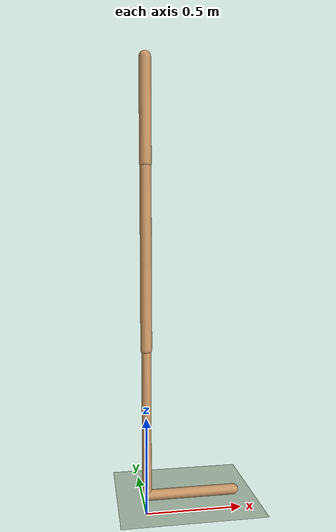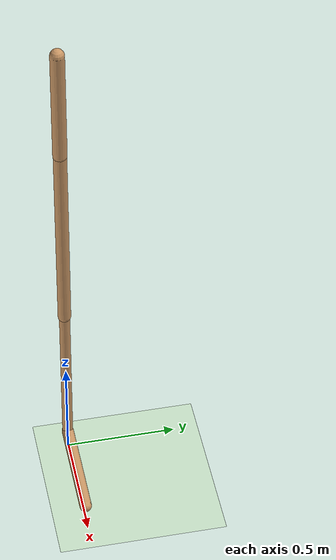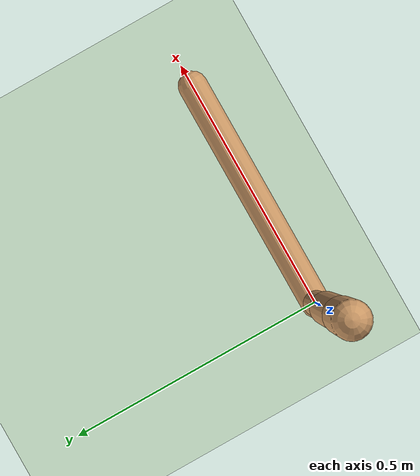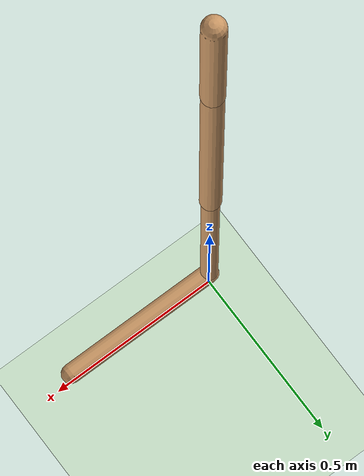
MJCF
<mujoco model="walker2d">
  <compiler angle="degree" inertiafromgeom="true" />
  <default>
    <joint armature="0.01" damping=".1" limited="true" />
    <geom conaffinity="0" condim="3" contype="1" density="1000" friction=".7 .1 .1" rgba="0.8 0.6 .4 1" />
  </default>
  <option integrator="RK4" timestep="0.002" />
  <worldbody>
    <light cutoff="100" diffuse="1 1 1" dir="-0 0 -1.3" directional="true" exponent="1" pos="0 0 1.3" specular=".1 .1 .1" />
    <geom conaffinity="1" condim="3" name="floor" pos="0 0 0" rgba="0.8 0.9 0.8 1" size="40 40 40" type="plane" material="MatPlane" />
    <body name="torso" pos="0 0 2.0529662132263184">
      <camera name="track" mode="trackcom" pos="0 -5 -1.25" xyaxes="1 0 0 0 0 1" />
      <joint armature="0" axis="1 0 0" damping="0" limited="false" name="rootx" pos="0 0 -1.25" stiffness="0" type="slide" />
      <joint armature="0" axis="0 0 1" damping="0" limited="false" name="rootz" pos="0 0 -1.25" ref="1.25" stiffness="0" type="slide" />
      <joint armature="0" axis="0 1 0" damping="0" limited="false" name="rooty" pos="0 0 0" stiffness="0" type="hinge" />
      <geom friction="0.9" name="torso_geom" size="0.030687101185321808 0.26083314418792725" type="capsule" />
      <body name="thigh" pos="0 0 -0.26083314418792725">
        <joint axis="0 -1 0" name="thigh_joint" pos="0 0 0" range="-150 0" type="hinge" />
        <site name="torso_thigh_site" pos="0 0 0" size="0.01" type="sphere" rgba="1 0 0 0.5" />
        <geom friction="0.9" pos="0 0 -0.4673004746437073" name="thigh_geom" size="0.029096173122525215 0.4673004746437073" type="capsule" />
        <body name="leg" pos="0 0 -1.3133670091629028">
          <joint axis="0 -1 0" name="leg_joint" pos="0 0 0.3787660598754883" range="-150 0" type="hinge" />
          <site name="thigh_leg_site" pos="0 0 0.25" size="0.01" type="sphere" rgba="1 0 0 0.5" />
          <geom friction="0.9" name="leg_geom" size="0.023973869159817696 0.3787660598754883" type="capsule" />
          <body name="foot" pos="0.45548349618911743 0 -0.47876605987548826">
            <joint axis="0 -1 0" name="foot_joint" pos="-0.45548349618911743 0 0.1" range="-45 45" type="hinge" />
            <site name="leg_foot_site" pos="-0.2 0 0.1" size="0.01" type="sphere" rgba="1 0 0 0.5" />
            <geom friction="0.9" pos="-0.22774174809455872 0 0.1" quat="0.70710678118654757 0 -0.70710678118654746 0" name="foot_geom" size="0.02725152298808098 0.22774174809455872" type="capsule" />
          </body>
        </body>
      </body>

      <body name="thigh_left" pos="0 0 -0.26083314418792725">
        <joint axis="0 -1 0" name="thigh_left_joint" pos="0 0 0" range="-150 0" type="hinge" />
        <site name="torso_thigh_left_site" pos="0 0 0" size="0.01" type="sphere" rgba="1 0 0 0.5" />
        <geom friction="0.9" name="thigh_left_geom" rgba=".7 .3 .6 1" size="0.029096173122525215 0.4673004746437073" pos="0 0 -0.4673004746437073" type="capsule" />
        <body name="leg_left" pos="0 0 -1.3133670091629028">
          <joint axis="0 -1 0" name="leg_left_joint" pos="0 0 0.3787660598754883" range="-150 0" type="hinge" />
          <site name="thigh_leg_left_site" pos="0 0 0.25" size="0.01" type="sphere" rgba="1 0 0 0.5" />
          <geom friction="0.9" name="leg_left_geom" rgba=".7 .3 .6 1" size="0.023973869159817696 0.3787660598754883" type="capsule" />
          <body name="foot_left" pos="0.45548349618911743 0 -0.47876605987548826">
            <joint axis="0 -1 0" name="foot_left_joint" pos="-0.45548349618911743 0 0.1" range="-45 45" type="hinge" />
            <site name="leg_foot_left_site" pos="-0.2 0 0.1" size="0.01" type="sphere" rgba="1 0 0 0.5" />
            <geom friction="1.9" name="foot_left_geom" rgba=".7 .3 .6 1" size="0.02725152298808098 0.22774174809455872" pos="-0.22774174809455872 0 0.1" type="capsule" quat="0.70710678118654757 0 -0.70710678118654746 0" />
          </body>
        </body>
      </body>
    </body>
  </worldbody>
  <actuator>

    <motor ctrllimited="true" ctrlrange="-1.0 1.0" gear="70.33078091022496" joint="thigh_joint" />
    <motor ctrllimited="true" ctrlrange="-1.0 1.0" gear="54.423607574882084" joint="leg_joint" />
    <motor ctrllimited="true" ctrlrange="-1.0 1.0" gear="46.98094043387807" joint="foot_joint" />
    <motor ctrllimited="true" ctrlrange="-1.0 1.0" gear="70.33078091022496" joint="thigh_left_joint" />
    <motor ctrllimited="true" ctrlrange="-1.0 1.0" gear="54.423607574882084" joint="leg_left_joint" />
    <motor ctrllimited="true" ctrlrange="-1.0 1.0" gear="46.98094043387807" joint="foot_left_joint" />

  </actuator>
    <asset>
        <texture type="skybox" builtin="gradient" rgb1=".4 .5 .6" rgb2="0 0 0" width="100" height="100" />
        <texture builtin="flat" height="1278" mark="cross" markrgb="1 1 1" name="texgeom" random="0.01" rgb1="0.8 0.6 0.4" rgb2="0.8 0.6 0.4" type="cube" width="127" />
        <texture builtin="checker" height="100" name="texplane" rgb1="0 0 0" rgb2="0.8 0.8 0.8" type="2d" width="100" />
        <material name="MatPlane" reflectance="0.5" shininess="1" specular="1" texrepeat="60 60" texture="texplane" />
        <material name="geom" texture="texgeom" texuniform="true" />
    </asset>

  <sensor>
    <force site="torso_thigh_site" name="torso_thigh_sensor" />
    <force site="thigh_leg_site" name="thigh_leg_sensor" />
    <force site="leg_foot_site" name="leg_foot_sensor" />
    <force site="torso_thigh_left_site" name="torso_thigh_left_sensor" />
    <force site="thigh_leg_left_site" name="thigh_leg_left_sensor" />
    <force site="leg_foot_left_site" name="leg_foot_left_sensor" />
  </sensor>
</mujoco>
